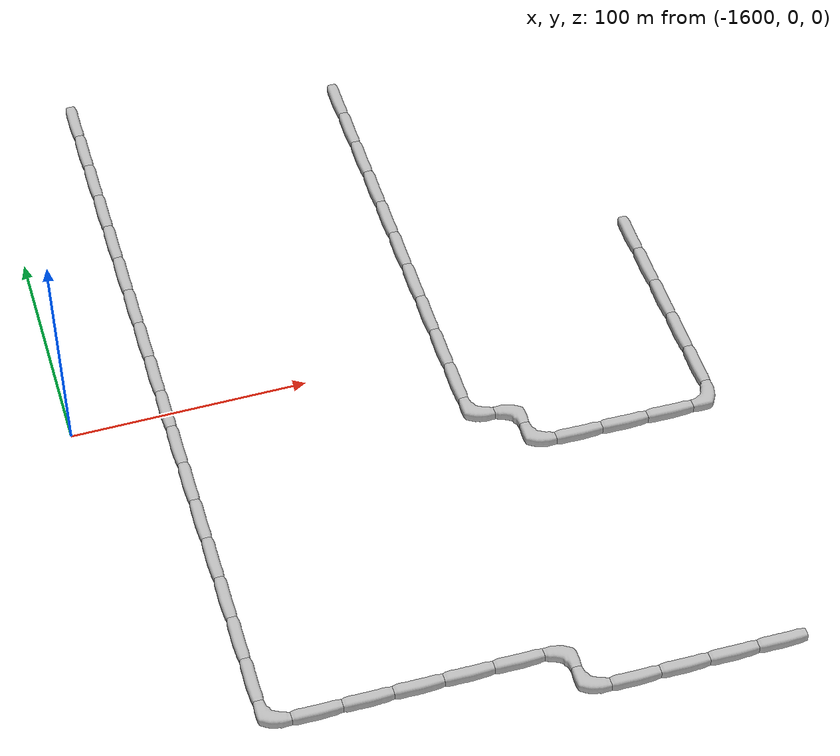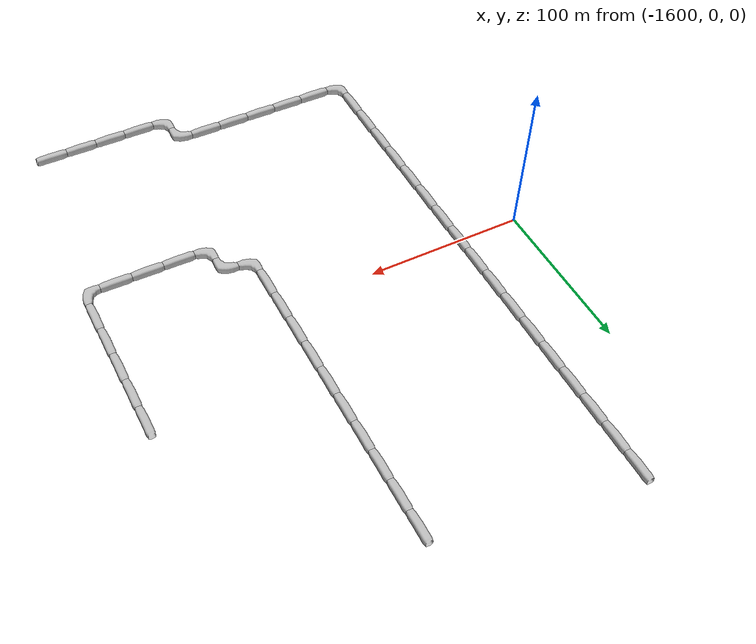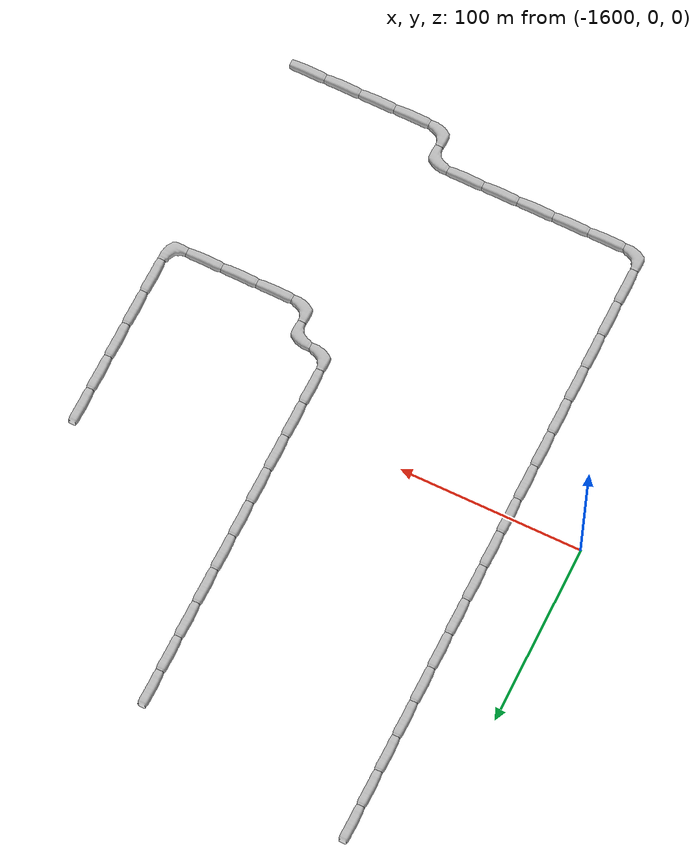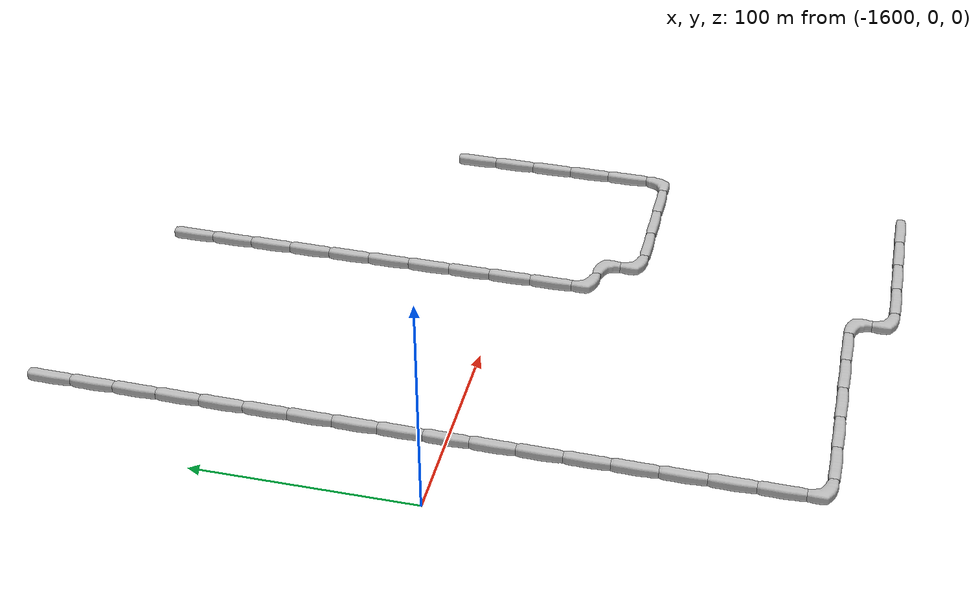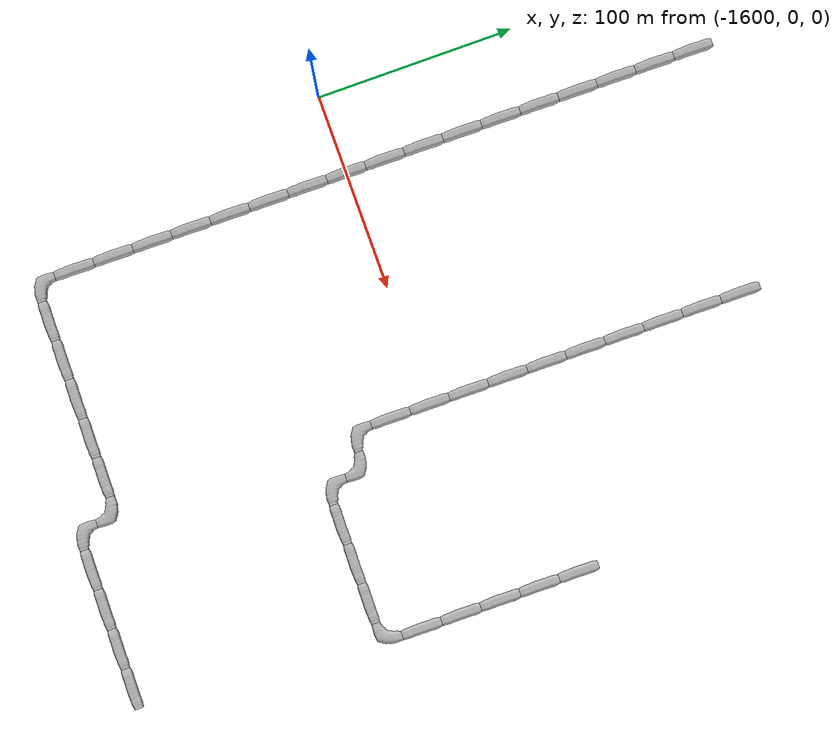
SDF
<sdf version="1.6">
 <world name="cave_16000_2">
  <include>
   <static>true</static>
   <name>cave_-67_2</name>
   <pose>-1340 40 0 0 0 0.0</pose>
   <uri>model://cave_straight_20m</uri>
  </include>
  <include>
   <static>true</static>
   <name>cave_-67_1</name>
   <pose>-1340 20 0 0 0 0.0</pose>
   <uri>model://cave_straight_20m</uri>
  </include>
  <include>
   <static>true</static>
   <name>cave_-67_0</name>
   <pose>-1340 0 0 0 0 0.0</pose>
   <uri>model://cave_straight_20m</uri>
  </include>
  <include>
   <static>true</static>
   <name>cave_-67_-1</name>
   <pose>-1340 -20 0 0 0 0.0</pose>
   <uri>model://cave_straight_20m</uri>
  </include>
  <include>
   <static>true</static>
   <name>cave_-67_-2</name>
   <pose>-1340 -40 0 0 0 0.0</pose>
   <uri>model://cave_straight_20m</uri>
  </include>
  <include>
   <static>true</static>
   <name>cave_-67_-3</name>
   <pose>-1340 -60 0 0 0 1.5707963267948966</pose>
   <uri>model://cave_L_20m</uri>
  </include>
  <include>
   <static>true</static>
   <name>cave_-68_-3</name>
   <pose>-1360 -60 0 0 0 1.5707963267948966</pose>
   <uri>model://cave_straight_20m</uri>
  </include>
  <include>
   <static>true</static>
   <name>cave_-69_-3</name>
   <pose>-1380 -60 0 0 0 1.5707963267948966</pose>
   <uri>model://cave_straight_20m</uri>
  </include>
  <include>
   <static>true</static>
   <name>cave_-70_-3</name>
   <pose>-1400 -60 0 0 0 1.5707963267948966</pose>
   <uri>model://cave_straight_20m</uri>
  </include>
  <include>
   <static>true</static>
   <name>cave_-71_-3</name>
   <pose>-1420 -60 0 0 0 0.0</pose>
   <uri>model://cave_L_20m</uri>
  </include>
  <include>
   <static>true</static>
   <name>cave_-71_-2</name>
   <pose>-1420 -40 0 0 0 3.141592653589793</pose>
   <uri>model://cave_L_20m</uri>
  </include>
  <include>
   <static>true</static>
   <name>cave_-72_-2</name>
   <pose>-1440 -40 0 0 0 0.0</pose>
   <uri>model://cave_L_20m</uri>
  </include>
  <include>
   <static>true</static>
   <name>cave_-72_-1</name>
   <pose>-1440 -20 0 0 0 0.0</pose>
   <uri>model://cave_straight_20m</uri>
  </include>
  <include>
   <static>true</static>
   <name>cave_-72_0</name>
   <pose>-1440 0 0 0 0 0.0</pose>
   <uri>model://cave_straight_20m</uri>
  </include>
  <include>
   <static>true</static>
   <name>cave_-72_1</name>
   <pose>-1440 20 0 0 0 0.0</pose>
   <uri>model://cave_straight_20m</uri>
  </include>
  <include>
   <static>true</static>
   <name>cave_-72_2</name>
   <pose>-1440 40 0 0 0 0.0</pose>
   <uri>model://cave_straight_20m</uri>
  </include>
  <include>
   <static>true</static>
   <name>cave_-72_3</name>
   <pose>-1440 60 0 0 0 0.0</pose>
   <uri>model://cave_straight_20m</uri>
  </include>
  <include>
   <static>true</static>
   <name>cave_-72_4</name>
   <pose>-1440 80 0 0 0 0.0</pose>
   <uri>model://cave_straight_20m</uri>
  </include>
  <include>
   <static>true</static>
   <name>cave_-72_5</name>
   <pose>-1440 100 0 0 0 0.0</pose>
   <uri>model://cave_straight_20m</uri>
  </include>
  <include>
   <static>true</static>
   <name>cave_-72_6</name>
   <pose>-1440 120 0 0 0 0.0</pose>
   <uri>model://cave_straight_20m</uri>
  </include>
  <include>
   <static>true</static>
   <name>cave_-72_7</name>
   <pose>-1440 140 0 0 0 0.0</pose>
   <uri>model://cave_straight_20m</uri>
  </include>
  <include>
   <static>true</static>
   <name>cave_-72_8</name>
   <pose>-1440 160 0 0 0 0.0</pose>
   <uri>model://cave_straight_20m</uri>
  </include>
  <include>
   <static>true</static>
   <name>cave_-78_9</name>
   <pose>-1560 180 0 0 0 0.0</pose>
   <uri>model://cave_straight_20m</uri>
  </include>
  <include>
   <static>true</static>
   <name>cave_-78_8</name>
   <pose>-1560 160 0 0 0 0.0</pose>
   <uri>model://cave_straight_20m</uri>
  </include>
  <include>
   <static>true</static>
   <name>cave_-78_7</name>
   <pose>-1560 140 0 0 0 0.0</pose>
   <uri>model://cave_straight_20m</uri>
  </include>
  <include>
   <static>true</static>
   <name>cave_-78_6</name>
   <pose>-1560 120 0 0 0 0.0</pose>
   <uri>model://cave_straight_20m</uri>
  </include>
  <include>
   <static>true</static>
   <name>cave_-78_5</name>
   <pose>-1560 100 0 0 0 0.0</pose>
   <uri>model://cave_straight_20m</uri>
  </include>
  <include>
   <static>true</static>
   <name>cave_-78_4</name>
   <pose>-1560 80 0 0 0 0.0</pose>
   <uri>model://cave_straight_20m</uri>
  </include>
  <include>
   <static>true</static>
   <name>cave_-78_3</name>
   <pose>-1560 60 0 0 0 0.0</pose>
   <uri>model://cave_straight_20m</uri>
  </include>
  <include>
   <static>true</static>
   <name>cave_-78_2</name>
   <pose>-1560 40 0 0 0 0.0</pose>
   <uri>model://cave_straight_20m</uri>
  </include>
  <include>
   <static>true</static>
   <name>cave_-78_1</name>
   <pose>-1560 20 0 0 0 0.0</pose>
   <uri>model://cave_straight_20m</uri>
  </include>
  <include>
   <static>true</static>
   <name>cave_-78_0</name>
   <pose>-1560 0 0 0 0 0.0</pose>
   <uri>model://cave_straight_20m</uri>
  </include>
  <include>
   <static>true</static>
   <name>cave_-78_-1</name>
   <pose>-1560 -20 0 0 0 0.0</pose>
   <uri>model://cave_straight_20m</uri>
  </include>
  <include>
   <static>true</static>
   <name>cave_-78_-2</name>
   <pose>-1560 -40 0 0 0 0.0</pose>
   <uri>model://cave_straight_20m</uri>
  </include>
  <include>
   <static>true</static>
   <name>cave_-78_-3</name>
   <pose>-1560 -60 0 0 0 0.0</pose>
   <uri>model://cave_straight_20m</uri>
  </include>
  <include>
   <static>true</static>
   <name>cave_-78_-4</name>
   <pose>-1560 -80 0 0 0 0.0</pose>
   <uri>model://cave_straight_20m</uri>
  </include>
  <include>
   <static>true</static>
   <name>cave_-78_-5</name>
   <pose>-1560 -100 0 0 0 0.0</pose>
   <uri>model://cave_straight_20m</uri>
  </include>
  <include>
   <static>true</static>
   <name>cave_-78_-6</name>
   <pose>-1560 -120 0 0 0 0.0</pose>
   <uri>model://cave_straight_20m</uri>
  </include>
  <include>
   <static>true</static>
   <name>cave_-78_-7</name>
   <pose>-1560 -140 0 0 0 0.0</pose>
   <uri>model://cave_straight_20m</uri>
  </include>
  <include>
   <static>true</static>
   <name>cave_-78_-8</name>
   <pose>-1560 -160 0 0 0 0.0</pose>
   <uri>model://cave_L_20m</uri>
  </include>
  <include>
   <static>true</static>
   <name>cave_-77_-8</name>
   <pose>-1540 -160 0 0 0 1.5707963267948966</pose>
   <uri>model://cave_straight_20m</uri>
  </include>
  <include>
   <static>true</static>
   <name>cave_-76_-8</name>
   <pose>-1520 -160 0 0 0 1.5707963267948966</pose>
   <uri>model://cave_straight_20m</uri>
  </include>
  <include>
   <static>true</static>
   <name>cave_-75_-8</name>
   <pose>-1500 -160 0 0 0 1.5707963267948966</pose>
   <uri>model://cave_straight_20m</uri>
  </include>
  <include>
   <static>true</static>
   <name>cave_-74_-8</name>
   <pose>-1480 -160 0 0 0 1.5707963267948966</pose>
   <uri>model://cave_straight_20m</uri>
  </include>
  <include>
   <static>true</static>
   <name>cave_-73_-8</name>
   <pose>-1460 -160 0 0 0 1.5707963267948966</pose>
   <uri>model://cave_straight_20m</uri>
  </include>
  <include>
   <static>true</static>
   <name>cave_-72_-8</name>
   <pose>-1440 -160 0 0 0 3.141592653589793</pose>
   <uri>model://cave_L_20m</uri>
  </include>
  <include>
   <static>true</static>
   <name>cave_-72_-9</name>
   <pose>-1440 -180 0 0 0 0.0</pose>
   <uri>model://cave_L_20m</uri>
  </include>
  <include>
   <static>true</static>
   <name>cave_-71_-9</name>
   <pose>-1420 -180 0 0 0 1.5707963267948966</pose>
   <uri>model://cave_straight_20m</uri>
  </include>
  <include>
   <static>true</static>
   <name>cave_-70_-9</name>
   <pose>-1400 -180 0 0 0 1.5707963267948966</pose>
   <uri>model://cave_straight_20m</uri>
  </include>
  <include>
   <static>true</static>
   <name>cave_-69_-9</name>
   <pose>-1380 -180 0 0 0 1.5707963267948966</pose>
   <uri>model://cave_straight_20m</uri>
  </include>
  <include>
   <static>true</static>
   <name>cave_-68_-9</name>
   <pose>-1360 -180 0 0 0 1.5707963267948966</pose>
   <uri>model://cave_straight_20m</uri>
  </include>
 </world>
</sdf>
